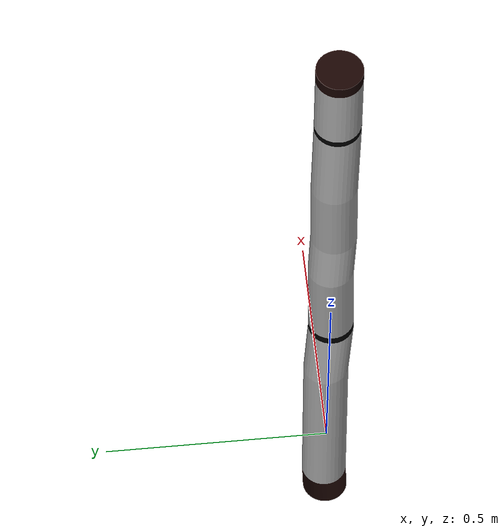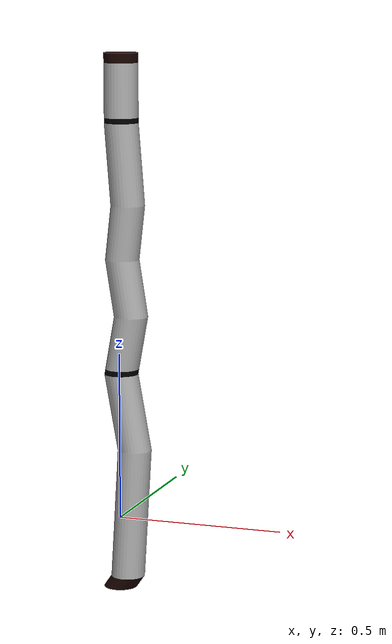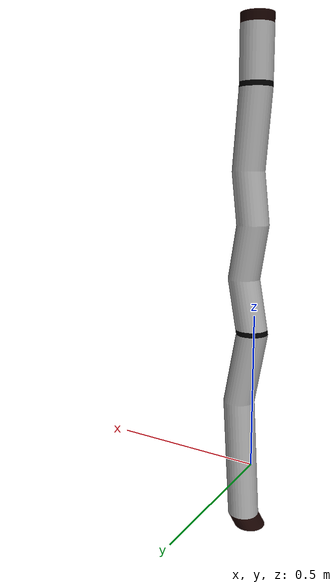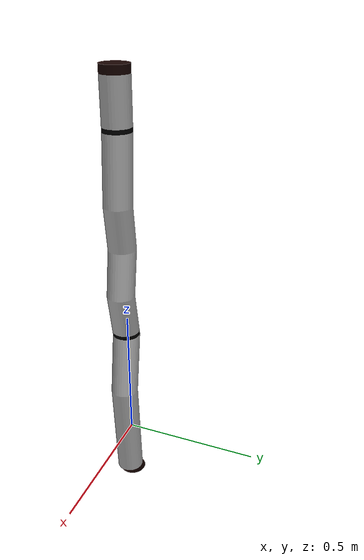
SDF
<?xml version="1.0" ?>
<sdf version='1.5'>
<model name='rubber_wire'>
<static>true</static>
<link name="link">
   <pose frame=''>0 0 0 0 0 0</pose>
  <visual name='visual'>
    <cast_shadows>false</cast_shadows>
    <geometry>
      <mesh>
        <scale>1.0 1.0 1.0</scale>
        <uri>model://rubber_wire/untitled.dae</uri>
      </mesh>
    </geometry>
  </visual>
</link>
</model>
</sdf>
